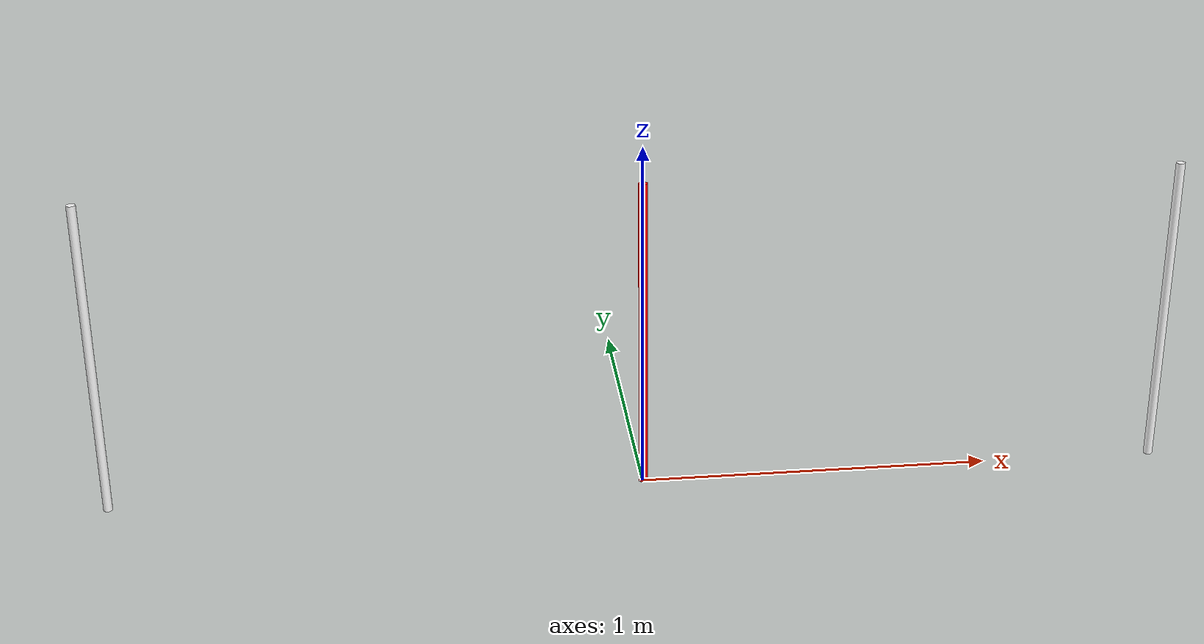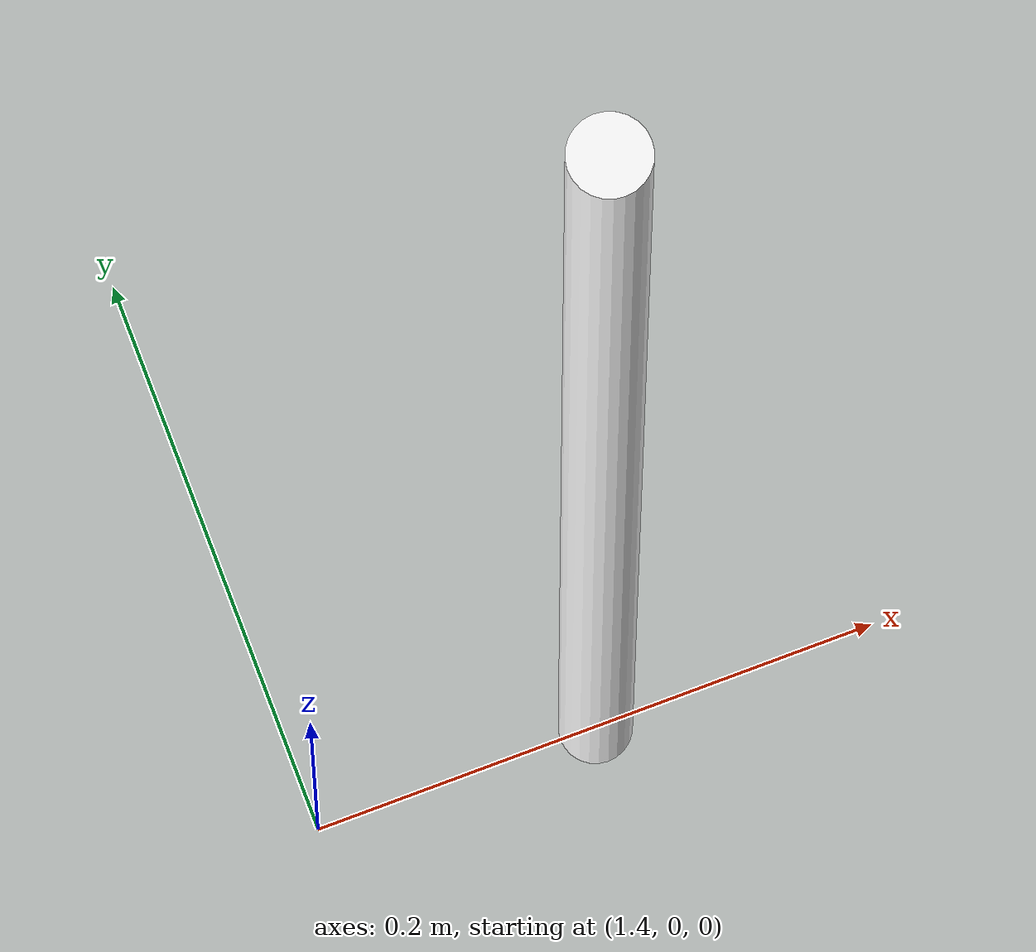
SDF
<?xml version="1.0" ?>
<sdf version="1.6">
  <model name="robosub_slalom">
    <static>true</static>
    <link name="left_white_pipe">
      <pose>-1.5 0 0.45 0 0 0</pose>
      <visual name="visual">
        <geometry>
          <cylinder>
            <radius>0.0127</radius>
            <length>0.9</length>
          </cylinder>
        </geometry>
        <material>
          <ambient>1 1 1 1</ambient>
          <diffuse>1 1 1 1</diffuse>
        </material>
      </visual>
      <collision name="collision">
        <geometry>
          <cylinder>
            <radius>0.0127</radius>
            <length>0.9</length>
          </cylinder>
        </geometry>
      </collision>
    </link>
    <link name="red_pipe">
      <pose>0 0 0.45 0 0 0</pose>
      <visual name="visual">
        <geometry>
          <cylinder>
            <radius>0.0127</radius>
            <length>0.9</length>
          </cylinder>
        </geometry>
        <material>
          <ambient>1 0 0 1</ambient>
          <diffuse>1 0 0 1</diffuse>
        </material>
      </visual>
      <collision name="collision">
        <geometry>
          <cylinder>
            <radius>0.0127</radius>
            <length>0.9</length>
          </cylinder>
        </geometry>
      </collision>
    </link>
    <link name="right_white_pipe">
      <pose>1.5 0 0.45 0 0 0</pose>
      <visual name="visual">
        <geometry>
          <cylinder>
            <radius>0.0127</radius>
            <length>0.9</length>
          </cylinder>
        </geometry>
        <material>
          <ambient>1 1 1 1</ambient>
          <diffuse>1 1 1 1</diffuse>
        </material>
      </visual>
      <collision name="collision">
        <geometry>
          <cylinder>
            <radius>0.0127</radius>
            <length>0.9</length>
          </cylinder>
        </geometry>
      </collision>
    </link>
  </model>
</sdf>
